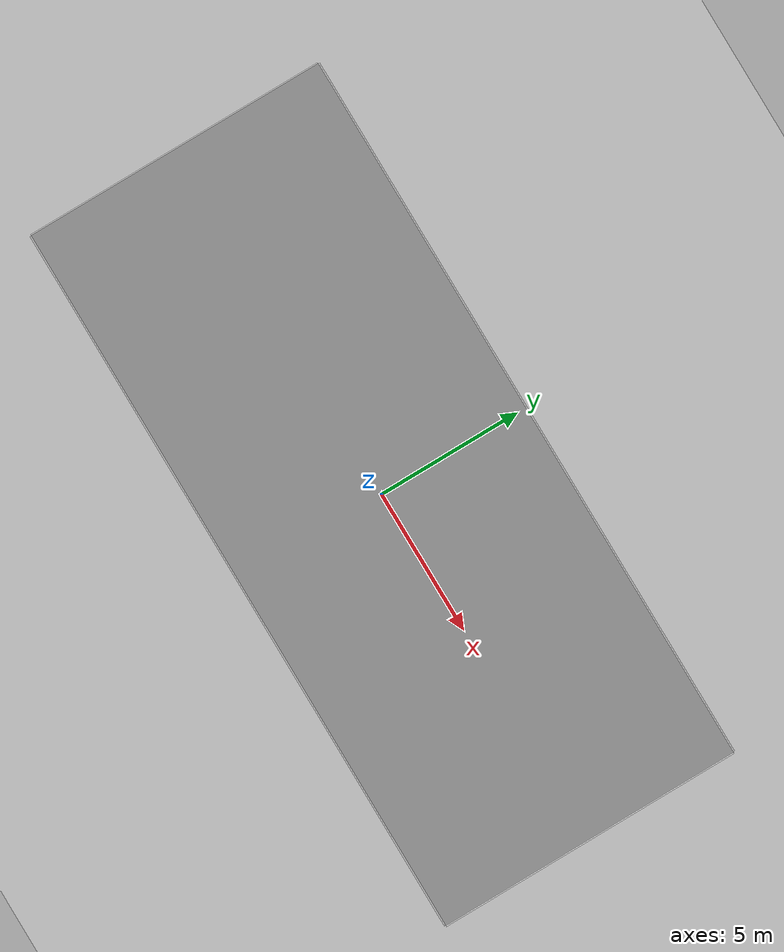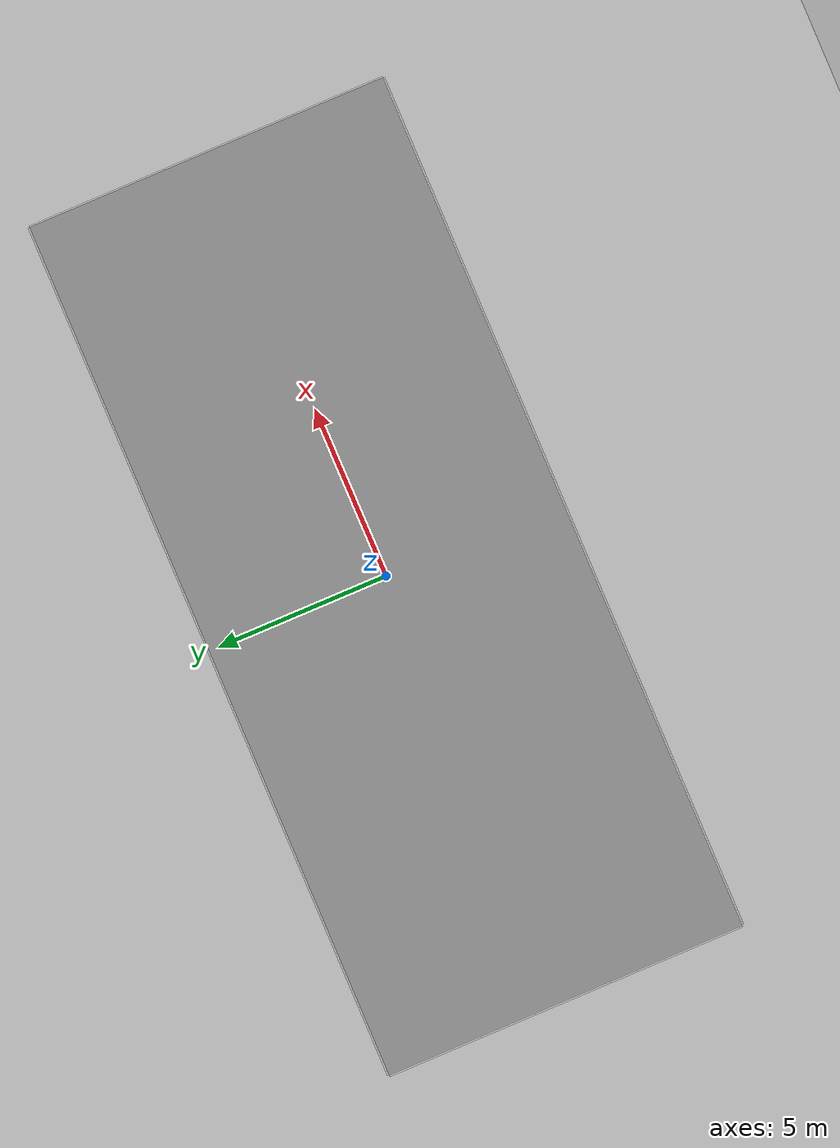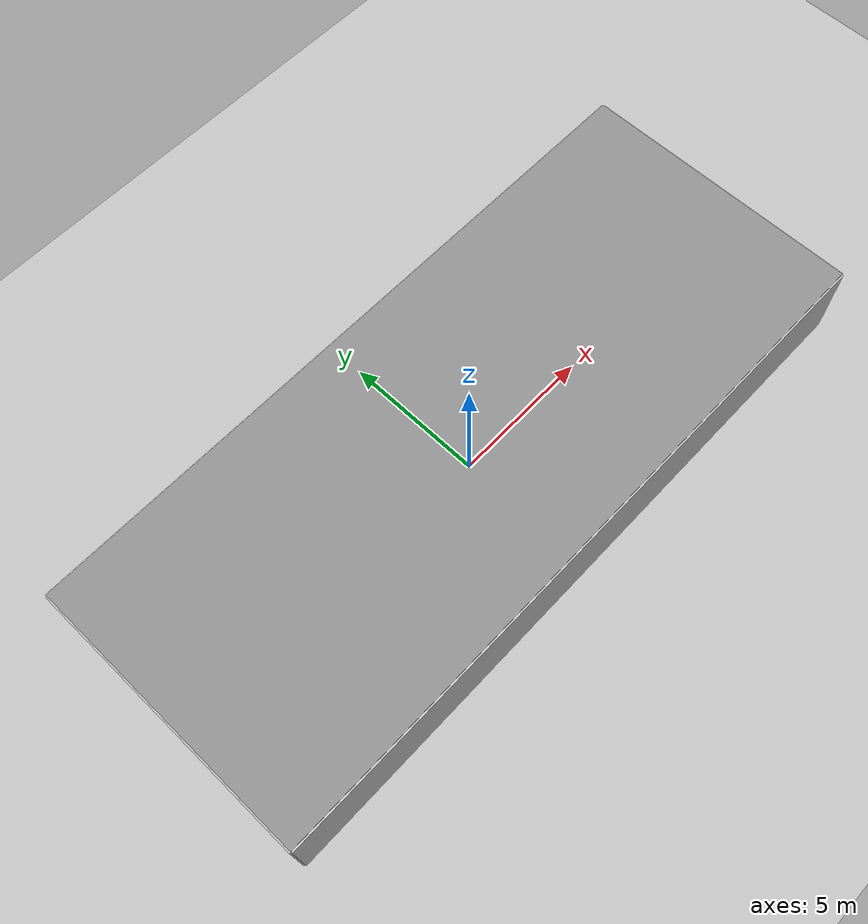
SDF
<?xml version="1.0"?>

<sdf version="1.6">
  <world name="mega_overrack_indoor">

    <!-- Publishes /gazebo/model_states and /gazebo/link_states to ROS2 -->
    <plugin name="gazebo_ros_state" filename="libgazebo_ros_state.so">
      <ros>
        <namespace>/gazebo</namespace>
      </ros>
    </plugin>

    <model name="origin_marker">
      <static>true</static>
      <pose>0 0 0 0 0 0</pose>
      <link name="link">
        <visual name="visual">
          <geometry>
            <box>
              <size>0.2 0.2 0.2</size>
            </box>
          </geometry>
          <material>
            <ambient>1 0 0 1</ambient>
            <diffuse>1 0 0 1</diffuse>
          </material>
        </visual>
      </link>
    </model>

    <gravity>0 0 -9.81</gravity>
    <scene>
      <ambient>0.4 0.4 0.4 1</ambient>
      <background>0.7 0.7 0.8 1</background>
      <shadows>true</shadows>
    </scene>

    <gui fullscreen="0">
      <camera name="overrack_default">
        <!-- adjusted to see the whole 24m room -->
        <pose>0.5 -10 16.0 0 0.89 1.57</pose>
        <view_controller>fps</view_controller>
      </camera>
    </gui>

    <physics type="ode">
      <max_step_size>0.004</max_step_size>
      <real_time_update_rate>250</real_time_update_rate>
      <real_time_factor>1.0</real_time_factor>
    </physics>

    <!-- Indoor: keep sun disabled -->
    <include>
      <uri>model://ground_plane</uri>
    </include>

    <!-- Room (DOUBLED in X): 24m x 10m, 3m tall -->
    <model name="room">
      <static>true</static>
      <pose>0 0 0 0 0 0</pose>

      <!-- Roof -->
      <link name="roof">
        <pose>0 0 3.0 0 0 0</pose>
        <collision name="col">
          <geometry>
            <box>
              <size>24 10 0.1</size>
            </box>
          </geometry>
        </collision>
        <visual name="vis">
          <geometry>
            <box>
              <size>24 10 0.1</size>
            </box>
          </geometry>
          <material>
            <script>
              <name>Gazebo/Gray</name>
            </script>
            <transparency>0.7</transparency>
            <ambient>1 1 1 0.1</ambient>
            <diffuse>1 1 1 0.1</diffuse>
          </material>
        </visual>
      </link>

      <!-- Walls -->
      <link name="wall_north">
        <pose>0 5 1.5 0 0 0</pose>
        <collision name="col">
          <geometry>
            <box><size>24 0.1 3</size></box>
          </geometry>
        </collision>
        <visual name="vis">
          <geometry>
            <box><size>24 0.1 3</size></box>
          </geometry>
          <material>
            <ambient>0.85 0.85 0.85 1</ambient>
            <diffuse>0.85 0.85 0.85 1</diffuse>
            <transparency>0.6</transparency>
          </material>
        </visual>
      </link>

      <link name="wall_south">
        <pose>0 -5 1.5 0 0 0</pose>
        <collision name="col">
          <geometry>
            <box><size>24 0.1 3</size></box>
          </geometry>
        </collision>
        <visual name="vis">
          <geometry>
            <box><size>24 0.1 3</size></box>
          </geometry>
          <material>
            <ambient>0.85 0.85 0.85 1</ambient>
            <diffuse>0.85 0.85 0.85 1</diffuse>
            <transparency>0.6</transparency>
          </material>
        </visual>
      </link>

      <link name="wall_east">
        <pose>12 0 1.5 0 0 0</pose>
        <collision name="col">
          <geometry>
            <box><size>0.1 10 3</size></box>
          </geometry>
        </collision>
        <visual name="vis">
          <geometry>
            <box><size>0.1 10 3</size></box>
          </geometry>
          <material>
            <ambient>0.85 0.85 0.85 1</ambient>
            <diffuse>0.85 0.85 0.85 1</diffuse>
            <transparency>0.6</transparency>
          </material>
        </visual>
      </link>

      <link name="wall_west">
        <pose>-12 0 1.5 0 0 0</pose>
        <collision name="col">
          <geometry>
            <box><size>0.1 10 3</size></box>
          </geometry>
        </collision>
        <visual name="vis">
          <geometry>
            <box><size>0.1 10 3</size></box>
          </geometry>
          <material>
            <ambient>0.85 0.85 0.85 1</ambient>
            <diffuse>0.85 0.85 0.85 1</diffuse>
            <transparency>0.6</transparency>
          </material>
        </visual>
      </link>
    </model>

    <!-- DUPLICATED SETUPS: LEFT (x=-6) and RIGHT (x=+6)            -->

    <!-- ---------------- LEFT SETUP (offset -6) ---------------- -->
    <!-- Two rack rows -->
    <include>
      <uri>model://overrack_shelf</uri>
      <name>rack_row_a_L</name>
      <pose>-6 -2.5 0 0 0 0</pose>
    </include>
    <include>
      <uri>model://overrack_shelf</uri>
      <name>rack_row_b_L</name>
      <pose>-6 2.5 0 0 0 0</pose>
    </include>

    <!-- Boxes on shelves -->
    <include><uri>model://overrack_box</uri><name>box_a1_L</name><pose>-6.8 -2.6 0.55 0 0 0</pose></include>
    <include><uri>model://overrack_box</uri><name>box_a2_L</name><pose>-6.0 -2.6 0.55 0 0 0</pose></include>
    <include><uri>model://overrack_box</uri><name>box_a3_L</name><pose>-5.2 -2.6 0.55 0 0 0</pose></include>
    <include><uri>model://overrack_box</uri><name>box_a4_L</name><pose>-6.8 -2.6 1.55 0 0 0</pose></include>
    <include><uri>model://overrack_box</uri><name>box_a5_L</name><pose>-6.0 -2.6 1.55 0 0 0</pose></include>
    <include><uri>model://overrack_box</uri><name>box_a6_L</name><pose>-5.2 -2.6 1.55 0 0 0</pose></include>

    <include><uri>model://overrack_box</uri><name>box_b1_L</name><pose>-6.8 2.6 0.55 0 0 0</pose></include>
    <include><uri>model://overrack_box</uri><name>box_b2_L</name><pose>-6.0 2.6 0.55 0 0 0</pose></include>
    <include><uri>model://overrack_box</uri><name>box_b3_L</name><pose>-5.2 2.6 0.55 0 0 0</pose></include>
    <include><uri>model://overrack_box</uri><name>box_b4_L</name><pose>-6.8 2.6 1.55 0 0 0</pose></include>
    <include><uri>model://overrack_box</uri><name>box_b5_L</name><pose>-6.0 2.6 1.55 0 0 0</pose></include>
    <include><uri>model://overrack_box</uri><name>box_b6_L</name><pose>-5.2 2.6 1.55 0 0 0</pose></include>

    <!-- Lights (duplicated, shifted by -6) -->
    <light type="spot" name="neon_L_row1_1"><pose>-8.0 4 2.9 -0.50 -0.40 0</pose><diffuse>0.5 0.5 0.5 1</diffuse><specular>0.2 0.2 0.2 1</specular><attenuation><range>25</range><constant>0.5</constant><linear>0.02</linear><quadratic>0.005</quadratic></attenuation><spot><inner_angle>0.6</inner_angle><outer_angle>1.0</outer_angle><falloff>0.3</falloff></spot></light>
    <light type="spot" name="neon_L_row1_2"><pose>-6.0 4 2.9 -0.80 0 0</pose><diffuse>0.5 0.5 0.5 1</diffuse><specular>0.2 0.2 0.2 1</specular><attenuation><range>25</range><constant>0.5</constant><linear>0.02</linear><quadratic>0.005</quadratic></attenuation><spot><inner_angle>0.6</inner_angle><outer_angle>1.0</outer_angle><falloff>0.3</falloff></spot></light>
    <light type="spot" name="neon_L_row1_3"><pose>-4.0 4 2.9 -0.50 0.40 0</pose><diffuse>0.5 0.5 0.5 1</diffuse><specular>0.2 0.2 0.2 1</specular><attenuation><range>25</range><constant>0.5</constant><linear>0.02</linear><quadratic>0.005</quadratic></attenuation><spot><inner_angle>0.6</inner_angle><outer_angle>1.0</outer_angle><falloff>0.3</falloff></spot></light>

    <light type="spot" name="neon_L_row2_1"><pose>-8.0 -4 2.9 0.50 -0.40 0</pose><diffuse>0.5 0.5 0.5 1</diffuse><specular>0.2 0.2 0.2 1</specular><attenuation><range>25</range><constant>0.5</constant><linear>0.02</linear><quadratic>0.005</quadratic></attenuation><spot><inner_angle>0.6</inner_angle><outer_angle>1.0</outer_angle><falloff>0.3</falloff></spot></light>
    <light type="spot" name="neon_L_row2_2"><pose>-6.0 -4 2.9 0.80 0 0</pose><diffuse>0.5 0.5 0.5 1</diffuse><specular>0.2 0.2 0.2 1</specular><attenuation><range>25</range><constant>0.5</constant><linear>0.02</linear><quadratic>0.005</quadratic></attenuation><spot><inner_angle>0.6</inner_angle><outer_angle>1.0</outer_angle><falloff>0.3</falloff></spot></light>
    <light type="spot" name="neon_L_row2_3"><pose>-4.0 -4 2.9 0.50 0.40 0</pose><diffuse>0.5 0.5 0.5 1</diffuse><specular>0.2 0.2 0.2 1</specular><attenuation><range>25</range><constant>0.5</constant><linear>0.02</linear><quadratic>0.005</quadratic></attenuation><spot><inner_angle>0.6</inner_angle><outer_angle>1.0</outer_angle><falloff>0.3</falloff></spot></light>

    <!-- ---------------- RIGHT SETUP (offset +6) ---------------- -->
    <!-- Two rack rows -->
    <include>
      <uri>model://overrack_shelf</uri>
      <name>rack_row_a_R</name>
      <pose>6 -2.5 0 0 0 0</pose>
    </include>
    <include>
      <uri>model://overrack_shelf</uri>
      <name>rack_row_b_R</name>
      <pose>6 2.5 0 0 0 0</pose>
    </include>

    <!-- Boxes on shelves -->
    <include><uri>model://overrack_box</uri><name>box_a1_R</name><pose>5.2 -2.6 0.55 0 0 0</pose></include>
    <include><uri>model://overrack_box</uri><name>box_a2_R</name><pose>6.0 -2.6 0.55 0 0 0</pose></include>
    <include><uri>model://overrack_box</uri><name>box_a3_R</name><pose>6.8 -2.6 0.55 0 0 0</pose></include>
    <include><uri>model://overrack_box</uri><name>box_a4_R</name><pose>5.2 -2.6 1.55 0 0 0</pose></include>
    <include><uri>model://overrack_box</uri><name>box_a5_R</name><pose>6.0 -2.6 1.55 0 0 0</pose></include>
    <include><uri>model://overrack_box</uri><name>box_a6_R</name><pose>6.8 -2.6 1.55 0 0 0</pose></include>

    <include><uri>model://overrack_box</uri><name>box_b1_R</name><pose>5.2 2.6 0.55 0 0 0</pose></include>
    <include><uri>model://overrack_box</uri><name>box_b2_R</name><pose>6.0 2.6 0.55 0 0 0</pose></include>
    <include><uri>model://overrack_box</uri><name>box_b3_R</name><pose>6.8 2.6 0.55 0 0 0</pose></include>
    <include><uri>model://overrack_box</uri><name>box_b4_R</name><pose>5.2 2.6 1.55 0 0 0</pose></include>
    <include><uri>model://overrack_box</uri><name>box_b5_R</name><pose>6.0 2.6 1.55 0 0 0</pose></include>
    <include><uri>model://overrack_box</uri><name>box_b6_R</name><pose>6.8 2.6 1.55 0 0 0</pose></include>

    <!-- Lights (duplicated, shifted by +6) -->
    <light type="spot" name="neon_R_row1_1"><pose>4.0 4 2.9 -0.50 -0.40 0</pose><diffuse>0.5 0.5 0.5 1</diffuse><specular>0.2 0.2 0.2 1</specular><attenuation><range>25</range><constant>0.5</constant><linear>0.02</linear><quadratic>0.005</quadratic></attenuation><spot><inner_angle>0.6</inner_angle><outer_angle>1.0</outer_angle><falloff>0.3</falloff></spot></light>
    <light type="spot" name="neon_R_row1_2"><pose>6.0 4 2.9 -0.80 0 0</pose><diffuse>0.5 0.5 0.5 1</diffuse><specular>0.2 0.2 0.2 1</specular><attenuation><range>25</range><constant>0.5</constant><linear>0.02</linear><quadratic>0.005</quadratic></attenuation><spot><inner_angle>0.6</inner_angle><outer_angle>1.0</outer_angle><falloff>0.3</falloff></spot></light>
    <light type="spot" name="neon_R_row1_3"><pose>8.0 4 2.9 -0.50 0.40 0</pose><diffuse>0.5 0.5 0.5 1</diffuse><specular>0.2 0.2 0.2 1</specular><attenuation><range>25</range><constant>0.5</constant><linear>0.02</linear><quadratic>0.005</quadratic></attenuation><spot><inner_angle>0.6</inner_angle><outer_angle>1.0</outer_angle><falloff>0.3</falloff></spot></light>

    <light type="spot" name="neon_R_row2_1"><pose>4.0 -4 2.9 0.50 -0.40 0</pose><diffuse>0.5 0.5 0.5 1</diffuse><specular>0.2 0.2 0.2 1</specular><attenuation><range>25</range><constant>0.5</constant><linear>0.02</linear><quadratic>0.005</quadratic></attenuation><spot><inner_angle>0.6</inner_angle><outer_angle>1.0</outer_angle><falloff>0.3</falloff></spot></light>
    <light type="spot" name="neon_R_row2_2"><pose>6.0 -4 2.9 0.80 0 0</pose><diffuse>0.5 0.5 0.5 1</diffuse><specular>0.2 0.2 0.2 1</specular><attenuation><range>25</range><constant>0.5</constant><linear>0.02</linear><quadratic>0.005</quadratic></attenuation><spot><inner_angle>0.6</inner_angle><outer_angle>1.0</outer_angle><falloff>0.3</falloff></spot></light>
    <light type="spot" name="neon_R_row2_3"><pose>8.0 -4 2.9 0.50 0.40 0</pose><diffuse>0.5 0.5 0.5 1</diffuse><specular>0.2 0.2 0.2 1</specular><attenuation><range>25</range><constant>0.5</constant><linear>0.02</linear><quadratic>0.005</quadratic></attenuation><spot><inner_angle>0.6</inner_angle><outer_angle>1.0</outer_angle><falloff>0.3</falloff></spot></light>

    <!-- Spawn (center of the mega room) -->
    <model name="wp_spawn_floor">
      <static>true</static>
      <pose>0.0 0.0 0 0 0 0</pose>
      <link name="link">
        <visual name="vis">
          <geometry>
            <cylinder>
              <radius>0.07</radius>
              <length>0.01</length>
            </cylinder>
          </geometry>
          <material>
            <ambient>0.2 0.8 0.2 1</ambient>
            <diffuse>0.2 0.8 0.2 1</diffuse>
          </material>
        </visual>
      </link>
    </model>

  </world>
</sdf>

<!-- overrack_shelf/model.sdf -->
<sdf version="1.6">
  <model name="overrack_shelf">
    <static>true</static>
    <!-- Dimensions: width 2.4m, depth 0.8m, height 2.0m -->
    <link name="frame">
      <!-- Four support posts -->
      <visual name="post_fl">
        <pose>-1.2 -0.4 1.0 0 0 0</pose>
        <geometry><box><size>0.06 0.06 2.0</size></box></geometry>
        <material><ambient>0.3 0.3 0.35 1</ambient><diffuse>0.3 0.3 0.35 1</diffuse></material>
      </visual>
      <collision name="post_fl_c">
        <pose>-1.2 -0.4 1.0 0 0 0</pose>
        <geometry><box><size>0.06 0.06 2.0</size></box></geometry>
      </collision>

      <visual name="post_fr">
        <pose>1.2 -0.4 1.0 0 0 0</pose>
        <geometry><box><size>0.06 0.06 2.0</size></box></geometry>
        <material><ambient>0.3 0.3 0.35 1</ambient><diffuse>0.3 0.3 0.35 1</diffuse></material>
      </visual>
      <collision name="post_fr_c">
        <pose>1.2 -0.4 1.0 0 0 0</pose>
        <geometry><box><size>0.06 0.06 2.0</size></box></geometry>
      </collision>

      <visual name="post_rl">
        <pose>-1.2 0.4 1.0 0 0 0</pose>
        <geometry><box><size>0.06 0.06 2.0</size></box></geometry>
        <material><ambient>0.3 0.3 0.35 1</ambient><diffuse>0.3 0.3 0.35 1</diffuse></material>
      </visual>
      <collision name="post_rl_c">
        <pose>-1.2 0.4 1.0 0 0 0</pose>
        <geometry><box><size>0.06 0.06 2.0</size></box></geometry>
      </collision>

      <visual name="post_rr">
        <pose>1.2 0.4 1.0 0 0 0</pose>
        <geometry><box><size>0.06 0.06 2.0</size></box></geometry>
        <material><ambient>0.3 0.3 0.35 1</ambient><diffuse>0.3 0.3 0.35 1</diffuse></material>
      </visual>
      <collision name="post_rr_c">
        <pose>1.2 0.4 1.0 0 0 0</pose>
        <geometry><box><size>0.06 0.06 2.0</size></box></geometry>
      </collision>

      <!-- Shelves (boards) at 0.5m and 1.5m -->
      <visual name="shelf_low">
        <pose>0 0 0.5 0 0 0</pose>
        <geometry><box><size>2.4 0.8 0.04</size></box></geometry>
        <material><ambient>0.6 0.5 0.4 1</ambient><diffuse>0.6 0.5 0.4 1</diffuse></material>
      </visual>
      <collision name="shelf_low_c">
        <pose>0 0 0.5 0 0 0</pose>
        <geometry><box><size>2.4 0.8 0.04</size></box></geometry>
      </collision>

      <visual name="shelf_up">
        <pose>0 0 1.5 0 0 0</pose>
        <geometry><box><size>2.4 0.8 0.04</size></box></geometry>
        <material><ambient>0.6 0.5 0.4 1</ambient><diffuse>0.6 0.5 0.4 1</diffuse></material>
      </visual>
      <collision name="shelf_up_c">
        <pose>0 0 1.5 0 0 0</pose>
        <geometry><box><size>2.4 0.8 0.04</size></box></geometry>
      </collision>
    </link>
  </model>
</sdf>

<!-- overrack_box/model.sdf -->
<sdf version="1.6">
  <model name="overrack_box">
    <static>true</static>
    <link name="box_link">
      <pose>0 0 0.1 0 0 0</pose>
      <collision name="box_collision">
        <geometry>
          <box>
            <size>0.4 0.3 0.2</size>
          </box>
        </geometry>
      </collision>
      <visual name="box_visual">
        <geometry>
          <box>
            <size>0.4 0.3 0.2</size>
          </box>
        </geometry>
        <material>
          <ambient>0.8 0.6 0.3 1</ambient>
          <diffuse>0.8 0.6 0.3 1</diffuse>
        </material>
      </visual>
    </link>
  </model>
</sdf>
